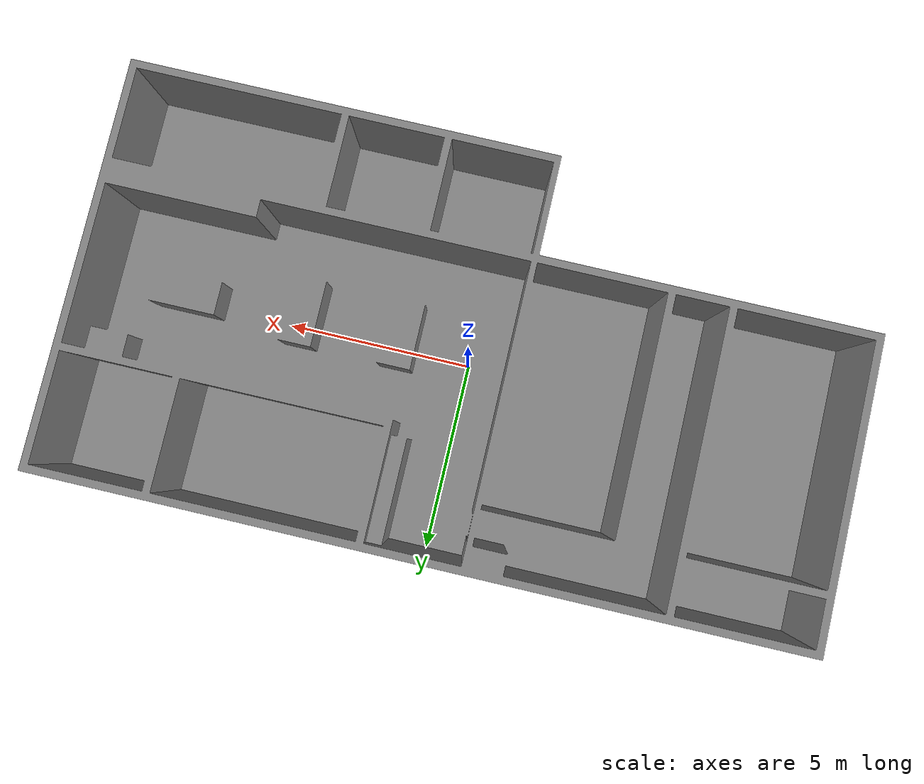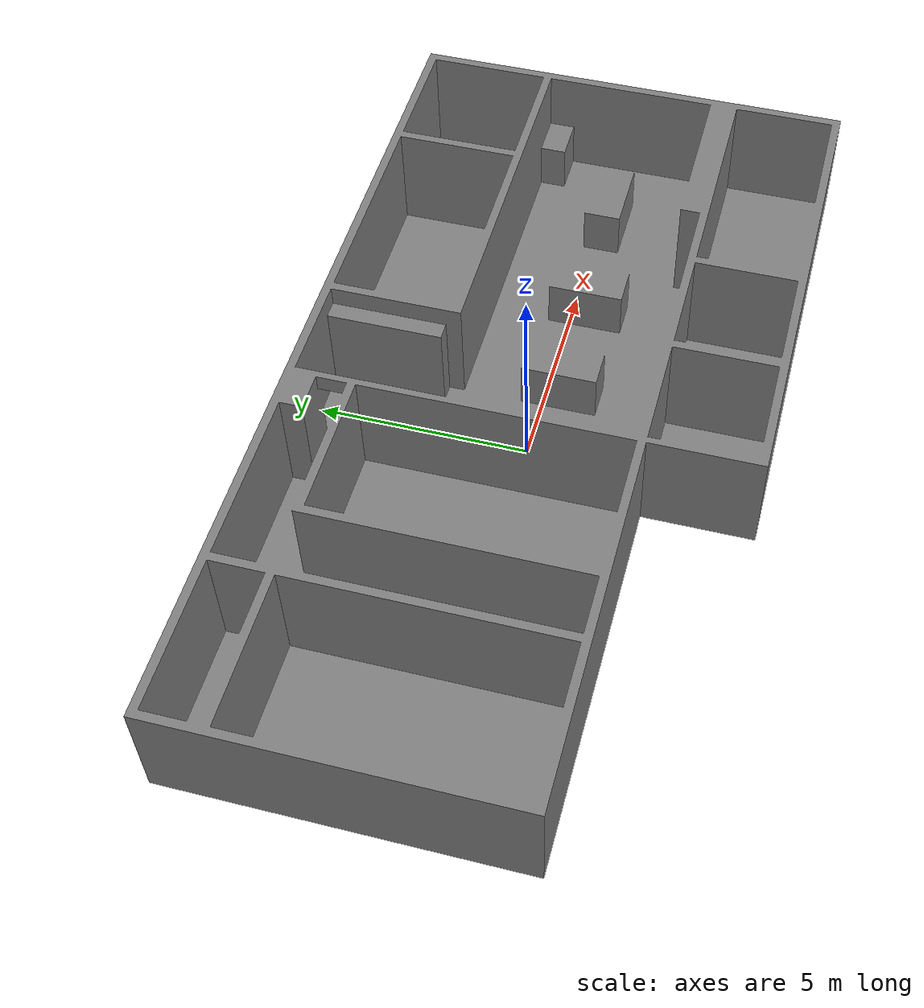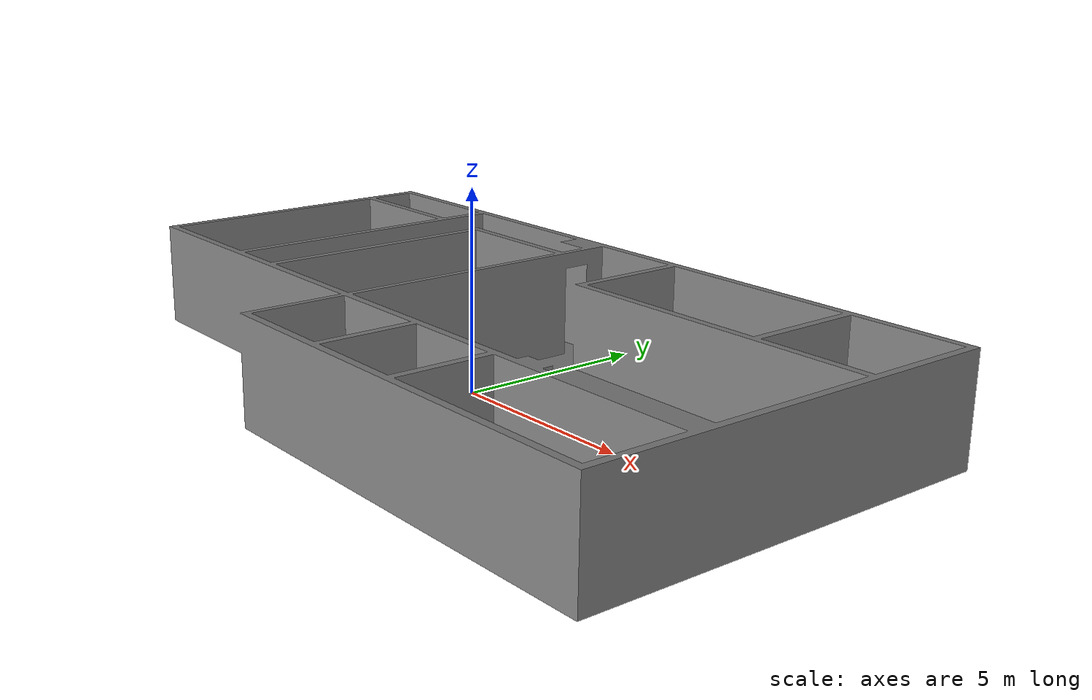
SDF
<?xml version="1.0" ?>
<sdf version="1.8">
  <world name="world_demo">
    <physics name="1ms" type="ignored">
      <max_step_size>0.001</max_step_size>
      <real_time_factor>1.0</real_time_factor>
    </physics>

    <!-- Plugins (keep these as they are) -->
    <plugin
      filename="gz-sim-physics-system"
      name="gz::sim::systems::Physics">
    </plugin>
    <plugin
      filename="gz-sim-sensors-system"
      name="gz::sim::systems::Sensors">
      <render_engine>ogre2</render_engine>
    </plugin>
    <plugin
      filename="gz-sim-user-commands-system"
      name="gz::sim::systems::UserCommands">
    </plugin>
    <plugin
      filename="gz-sim-scene-broadcaster-system"
      name="gz::sim::systems::SceneBroadcaster">
    </plugin>
    <plugin filename="gz-sim-imu-system"
        name="gz::sim::systems::Imu">
    </plugin>

    <!--light-->
    <light name="sun" type="directional">
      <cast_shadows>true</cast_shadows>
      <direction>-0.5 -0.5 -1</direction>
      <diffuse>1.0 1.0 1.0 1</diffuse>
      <specular>0.1 0.1 0.1 1</specular>
    </light>

    <model name="asan_hospital_map">
      <static>true</static>
      <pose>0 0 0 1.5708 0 0</pose>
      <link name="map_link">
        <visual name="map_visual">
          <geometry>
            <mesh>
              <uri>file:///home/kth/robot_dev/vicpinky_2/install/vicpinky_gazebo/share/vicpinky_gazebo/models/asan_hospital/meshes/asan_map.obj</uri>
              <scale>1 1 1</scale>
            </mesh>
          </geometry>
          <material>
            <ambient>0.3 0.3 0.3 1.0</ambient>
            <diffuse>0.5 0.5 0.5 1.0</diffuse>
            <specular>0.1 0.1 0.1 1.0</specular>
            <emissive>0.0 0.0 0.0 1.0</emissive>
          </material>
          <cast_shadows>true</cast_shadows>
        </visual>
        <collision name="map_collision">
          <geometry>
            <mesh>
              <uri>file:///home/kth/robot_dev/vicpinky_2/install/vicpinky_gazebo/share/vicpinky_gazebo/models/asan_hospital/meshes/asan_map.obj</uri>
              <scale>1 1 1</scale>
            </mesh>
          </geometry>
          <surface>
            <contact>
              <collide_without_contact>false</collide_without_contact>
            </contact>
            <friction>
              <ode>
                <mu>1</mu>
                <mu2>1</mu2>
              </ode>
            </friction>
          </surface>
        </collision>
      </link>
    </model>

  <model name="camera">
    <static>true</static>
      <pose>0 0 0.7 0 1.57 1.57</pose>
      <link name="link">
        <pose>0.05 0.05 0.05 0 0 0</pose>
        <inertial>
          <mass>0.1</mass>
          <inertia>
            <ixx>0.000166667</ixx>
            <iyy>0.000166667</iyy>
            <izz>0.000166667</izz>
          </inertia>
        </inertial>
        <collision name="collision">
          <geometry>
            <box>
              <size>0.1 0.1 0.1</size>
            </box>
          </geometry>
        </collision>
        <sensor name="camera" type="camera">
          <camera>
            <horizontal_fov>2.094</horizontal_fov>
            <image>
              <width>640</width>
              <height>480</height>
            </image>
            <clip>
              <near>0.1</near>
              <far>100</far>
            </clip>
          </camera>
          <always_on>1</always_on>
          <update_rate>30</update_rate>
          <visualize>true</visualize>
          <topic>camera</topic>
        </sensor>
      </link>
    </model>
  </world>
</sdf>
